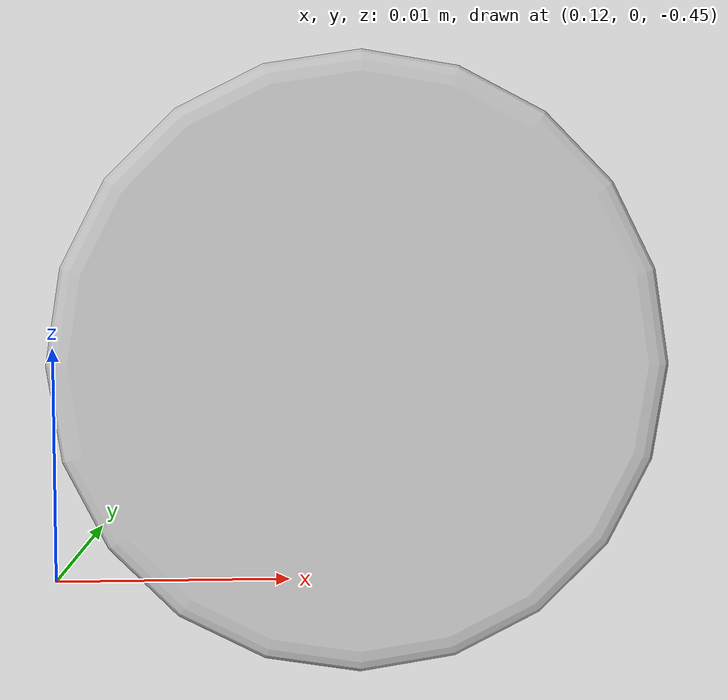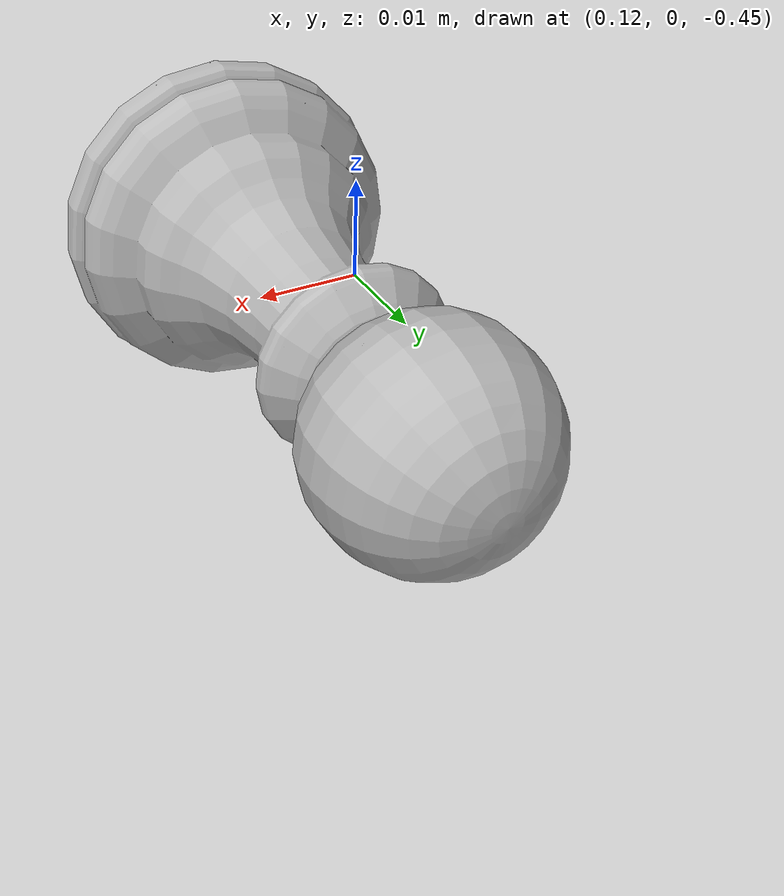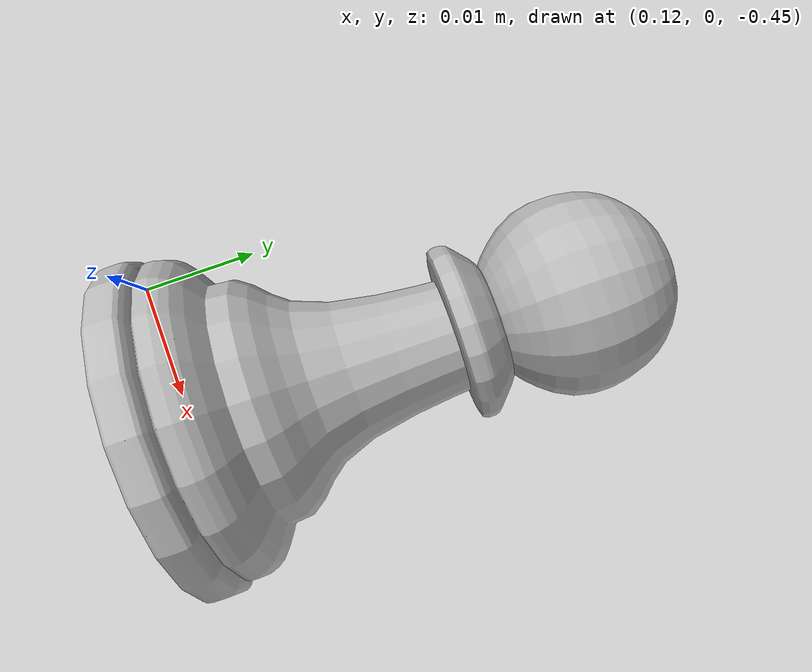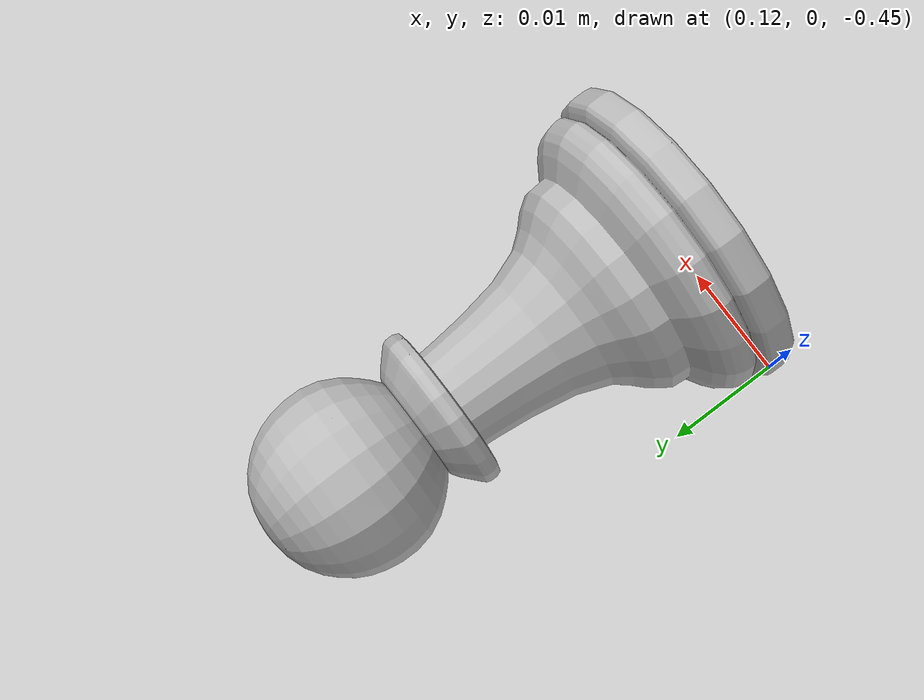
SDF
<?xml version="1.0"?>
<sdf version="1.7">
  <model name="light_pawn">
    <pose>0 0 0 0 0 0</pose>
    <link name="link">
      <inertial>
        <pose>0.13309400000000002 0.010489 -0.44077799999999995 0 0 0</pose>
        <mass>0.0218276782609648</mass>
        <inertia>
          <ixx>4.553840449608376e-06</ixx>
          <ixy>0.0</ixy>
          <ixz>0.0</ixz>
          <iyy>2.7037822972376697e-06</iyy>
          <iyz>0.0</iyz>
          <izz>4.553840449608376e-06</izz>
        </inertia>
      </inertial>
      <collision name="collision">
        <pose>0.13309400000000002 0.020978 -0.44077799999999995 0 0 0</pose>
        <geometry>
          <box>
            <size>0.027262 0.041956 0.027262</size>
          </box>
        </geometry>
      </collision>
      <visual name="box_visual">
        <geometry>
          <mesh>
            <uri>model.obj</uri>
            <scale>0.0002 0.0002 0.0002</scale>
          </mesh>
        </geometry>
      </visual>
    </link>
  </model>
</sdf>
